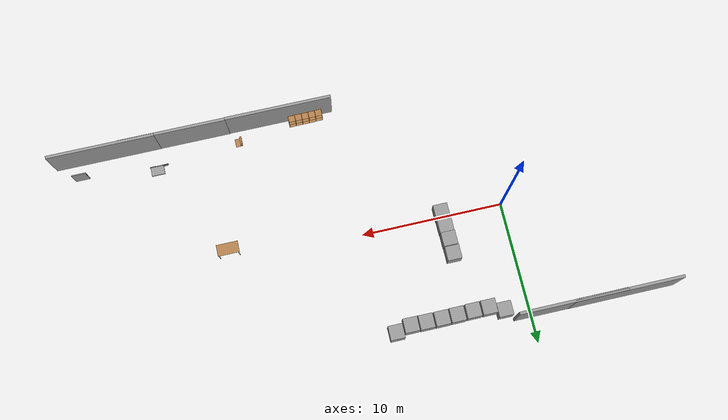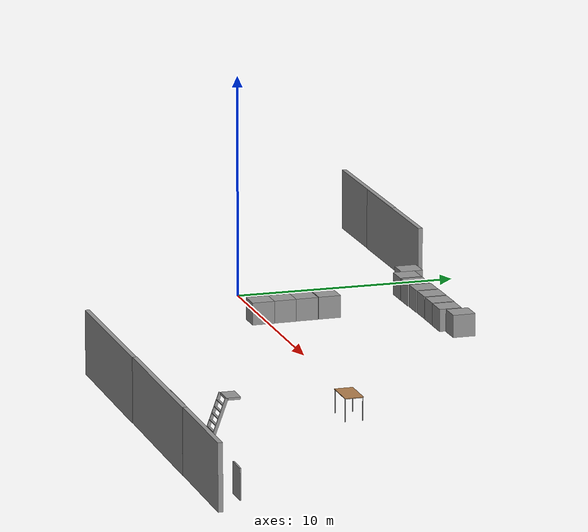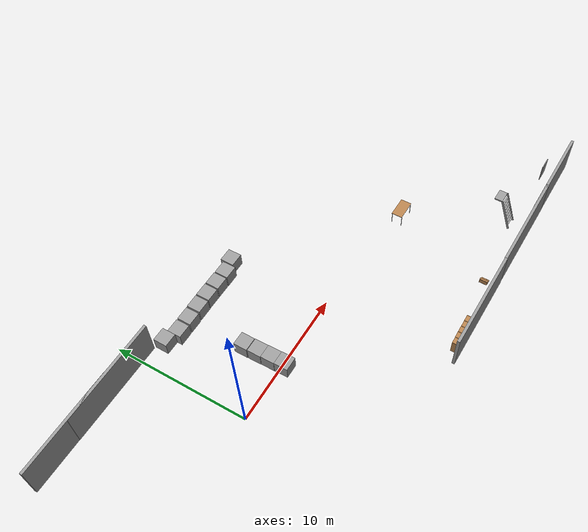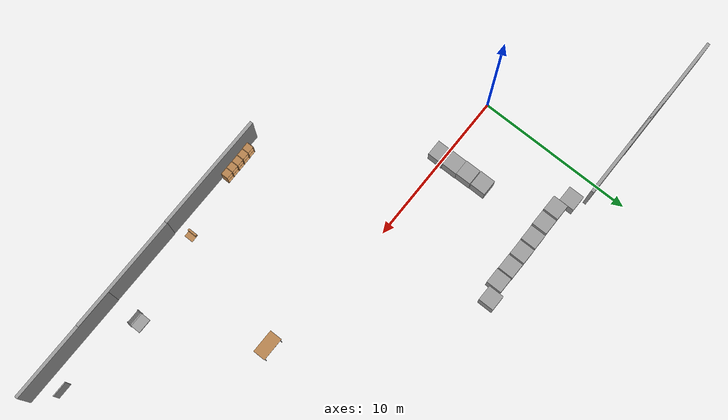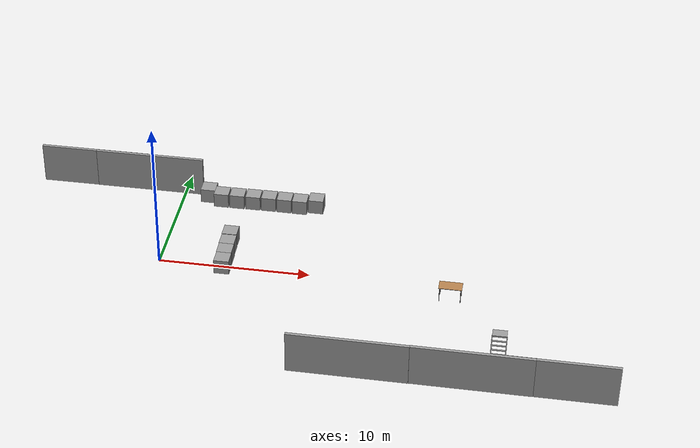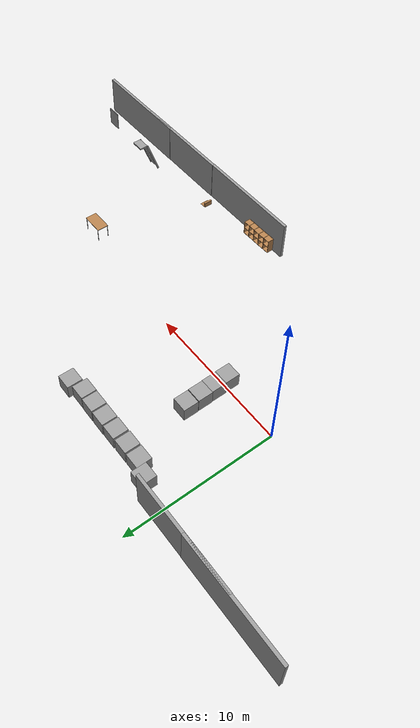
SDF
<sdf version="1.6">
 <world name="factory">
  <light name="sun" type="directional">
   <pose>0 0 10 0 -0 0</pose>
   <diffuse>0.8 0.8 0.8 1</diffuse>
   <specular>0.2 0.2 0.2 1</specular>
   <attenuation>
    <range>1000</range>
    <constant>0.9</constant>
    <linear>0.01</linear>
    <quadratic>0.001</quadratic>
   </attenuation>
   <direction>-0.5 0.1 -0.9</direction>
  </light>
  <gravity>0 0 -9.8</gravity>
  <magnetic_field>6e-06 2.3e-05 -4.2e-05</magnetic_field>
  <atmosphere type="adiabatic"/>
  <physics name="default_physics" default="0" type="ode">
   <max_step_size>0.001</max_step_size>
   <real_time_factor>1</real_time_factor>
   <real_time_update_rate>1000</real_time_update_rate>
  </physics>
  <scene><ambient>0.4 0.4 0.4 1</ambient><background>0.7 0.7 0.7 1</background><shadows>1</shadows></scene>
  <spherical_coordinates>
   <surface_model>EARTH_WGS84</surface_model>
   <latitude_deg>0</latitude_deg>
   <longitude_deg>0</longitude_deg>
   <elevation>0</elevation>
   <heading_deg>0</heading_deg>
  </spherical_coordinates>
  <model name="deletion_wall">
   <static>1</static>
   <link name="sensing_link">
    <gravity>0</gravity>
    <sensor name="object_disposal_contact" type="contact">
     <update_rate>10</update_rate>
     <contact><collision>collision</collision><topic>__default_topic__</topic></contact>
    </sensor>
    <collision name="collision"><geometry><box><size>0.1 1 1</size></box></geometry></collision>
    <visual name="visual">
     <geometry><box><size>0.1 1 1</size></box></geometry>
     <cast_shadows>0</cast_shadows>
     <transparency>100</transparency>
    </visual>
   </link>
   <plugin name="object_disposal_plugin" filename="libObjectDisposalPlugin.so">
    <contact_sensor_name>object_disposal_contact</contact_sensor_name>
    <contact_side_normal>1 0 0</contact_side_normal>
    <disposal_pose>30 30 0 0 0 0</disposal_pose>
    <update_rate>5</update_rate>
   </plugin>
   <pose>0.199032 -1.08981 0 0 -0 0</pose>
  </model>
  <model name="drone_collection_zone">
   <static>1</static>
   <link name="sensing_link">
    <gravity>0</gravity>
    <sensor name="object_disposal_contact" type="contact">
     <update_rate>10</update_rate>
     <contact><collision>collision</collision><topic>__default_topic__</topic></contact>
    </sensor>
    <collision name="collision"><geometry><box><size>0.1 2 2</size></box></geometry></collision>
   </link>
   <plugin name="object_disposal_plugin" filename="libObjectDisposalPlugin.so">
    <contact_sensor_name>object_disposal_contact</contact_sensor_name>
    <contacting_box_topic>/ariac/waiting_shipping_box</contacting_box_topic>
    <activation_topic>/ariac/drone_collection_zone/activate_deletion</activation_topic>
    <contact_side_normal>1 0 0</contact_side_normal>
    <disposal_pose>-7.5 -10 -0.5 0 0 0</disposal_pose>
    <update_rate>5</update_rate>
   </plugin>
   <pose>-0.093674 -2.00167 0 0 -0 0</pose>
  </model>
  <model name="ladder_70deg_0rails">
   <static>1</static>
   <link name="step0">
    <pose>0 0.097059 0.266667 0 -0 0</pose>
    <inertial>
     <mass>9.75482</mass>
     <inertia>
      <ixx>0.00957124</ixx>
      <iyy>0.65963</iyy>
      <izz>0.666842</izz>
      <ixy>0</ixy>
      <ixz>0</ixz>
      <iyz>0</iyz>
     </inertia>
    </inertial>
    <collision name="collision"><geometry><box><size>0.9 0.1016 0.0381</size></box></geometry></collision>
    <visual name="visual">
     <geometry><box><size>0.9 0.1016 0.0381</size></box></geometry>
     <material>
      <script><uri>file://media/materials/scripts/gazebo.material</uri><name>Gazebo/Grey</name></script>
     </material>
    </visual>
   </link>
   <link name="step1">
    <pose>0 0.194117 0.533333 0 -0 0</pose>
    <inertial>
     <mass>9.75482</mass>
     <inertia>
      <ixx>0.00957124</ixx>
      <iyy>0.65963</iyy>
      <izz>0.666842</izz>
      <ixy>0</ixy>
      <ixz>0</ixz>
      <iyz>0</iyz>
     </inertia>
    </inertial>
    <collision name="collision"><geometry><box><size>0.9 0.1016 0.0381</size></box></geometry></collision>
    <visual name="visual">
     <geometry><box><size>0.9 0.1016 0.0381</size></box></geometry>
     <material>
      <script><uri>file://media/materials/scripts/gazebo.material</uri><name>Gazebo/Grey</name></script>
     </material>
    </visual>
   </link>
   <link name="step2">
    <pose>0 0.291176 0.8 0 -0 0</pose>
    <inertial>
     <mass>9.75482</mass>
     <inertia>
      <ixx>0.00957124</ixx>
      <iyy>0.65963</iyy>
      <izz>0.666842</izz>
      <ixy>0</ixy>
      <ixz>0</ixz>
      <iyz>0</iyz>
     </inertia>
    </inertial>
    <collision name="collision"><geometry><box><size>0.9 0.1016 0.0381</size></box></geometry></collision>
    <visual name="visual">
     <geometry><box><size>0.9 0.1016 0.0381</size></box></geometry>
     <material>
      <script><uri>file://media/materials/scripts/gazebo.material</uri><name>Gazebo/Grey</name></script>
     </material>
    </visual>
   </link>
   <link name="step3">
    <pose>0 0.388235 1.06667 0 -0 0</pose>
    <inertial>
     <mass>9.75482</mass>
     <inertia>
      <ixx>0.00957124</ixx>
      <iyy>0.65963</iyy>
      <izz>0.666842</izz>
      <ixy>0</ixy>
      <ixz>0</ixz>
      <iyz>0</iyz>
     </inertia>
    </inertial>
    <collision name="collision"><geometry><box><size>0.9 0.1016 0.0381</size></box></geometry></collision>
    <visual name="visual">
     <geometry><box><size>0.9 0.1016 0.0381</size></box></geometry>
     <material>
      <script><uri>file://media/materials/scripts/gazebo.material</uri><name>Gazebo/Grey</name></script>
     </material>
    </visual>
   </link>
   <link name="step4">
    <pose>0 0.485294 1.33333 0 -0 0</pose>
    <inertial>
     <mass>9.75482</mass>
     <inertia>
      <ixx>0.00957124</ixx>
      <iyy>0.65963</iyy>
      <izz>0.666842</izz>
      <ixy>0</ixy>
      <ixz>0</ixz>
      <iyz>0</iyz>
     </inertia>
    </inertial>
    <collision name="collision"><geometry><box><size>0.9 0.1016 0.0381</size></box></geometry></collision>
    <visual name="visual">
     <geometry><box><size>0.9 0.1016 0.0381</size></box></geometry>
     <material>
      <script><uri>file://media/materials/scripts/gazebo.material</uri><name>Gazebo/Grey</name></script>
     </material>
    </visual>
   </link>
   <link name="step5">
    <pose>0 0.582352 1.6 0 -0 0</pose>
    <inertial>
     <mass>9.75482</mass>
     <inertia>
      <ixx>0.00957124</ixx>
      <iyy>0.65963</iyy>
      <izz>0.666842</izz>
      <ixy>0</ixy>
      <ixz>0</ixz>
      <iyz>0</iyz>
     </inertia>
    </inertial>
    <collision name="collision"><geometry><box><size>0.9 0.1016 0.0381</size></box></geometry></collision>
    <visual name="visual">
     <geometry><box><size>0.9 0.1016 0.0381</size></box></geometry>
     <material>
      <script><uri>file://media/materials/scripts/gazebo.material</uri><name>Gazebo/Grey</name></script>
     </material>
    </visual>
   </link>
   <link name="step6">
    <pose>0 0.679411 1.86667 0 -0 0</pose>
    <inertial>
     <mass>9.75482</mass>
     <inertia>
      <ixx>0.00957124</ixx>
      <iyy>0.65963</iyy>
      <izz>0.666842</izz>
      <ixy>0</ixy>
      <ixz>0</ixz>
      <iyz>0</iyz>
     </inertia>
    </inertial>
    <collision name="collision"><geometry><box><size>0.9 0.1016 0.0381</size></box></geometry></collision>
    <visual name="visual">
     <geometry><box><size>0.9 0.1016 0.0381</size></box></geometry>
     <material>
      <script><uri>file://media/materials/scripts/gazebo.material</uri><name>Gazebo/Grey</name></script>
     </material>
    </visual>
   </link>
   <link name="step7">
    <pose>0 0.77647 2.13333 0 -0 0</pose>
    <inertial>
     <mass>9.75482</mass>
     <inertia>
      <ixx>0.00957124</ixx>
      <iyy>0.65963</iyy>
      <izz>0.666842</izz>
      <ixy>0</ixy>
      <ixz>0</ixz>
      <iyz>0</iyz>
     </inertia>
    </inertial>
    <collision name="collision"><geometry><box><size>0.9 0.1016 0.0381</size></box></geometry></collision>
    <visual name="visual">
     <geometry><box><size>0.9 0.1016 0.0381</size></box></geometry>
     <material>
      <script><uri>file://media/materials/scripts/gazebo.material</uri><name>Gazebo/Grey</name></script>
     </material>
    </visual>
   </link>
   <link name="landing">
    <pose>0 1.17353 2.4 0 -0 0</pose>
    <inertial>
     <mass>57.6072</mass>
     <inertia><ixx>1.73518</ixx><iyy>3.89545</iyy><izz>5.6167</izz><ixy>0</ixy><ixz>0</ixz><iyz>0</iyz></inertia>
    </inertial>
    <collision name="collision"><geometry><box><size>0.9 0.6 0.1016</size></box></geometry></collision>
    <visual name="visual">
     <geometry><box><size>0.9 0.6 0.1016</size></box></geometry>
     <material>
      <script><uri>file://media/materials/scripts/gazebo.material</uri><name>Gazebo/Grey</name></script>
     </material>
    </visual>
   </link>
   <link name="left_side_wall">
    <pose>-0.45 0.436764 1.2 1.22173 -0 0</pose>
    <collision name="collision"><geometry><box><size>0.0508 2.63403 0.13</size></box></geometry></collision>
    <visual name="visual">
     <geometry><box><size>0.0508 2.63403 0.13</size></box></geometry>
     <material>
      <script><uri>file://media/materials/scripts/gazebo.material</uri><name>Gazebo/Grey</name></script>
     </material>
    </visual>
   </link>
   <link name="right_side_wall">
    <pose>0.45 0.436764 1.2 1.22173 -0 0</pose>
    <collision name="collision"><geometry><box><size>0.0508 2.63403 0.13</size></box></geometry></collision>
    <visual name="visual">
     <geometry><box><size>0.0508 2.63403 0.13</size></box></geometry>
     <material>
      <script><uri>file://media/materials/scripts/gazebo.material</uri><name>Gazebo/Grey</name></script>
     </material>
    </visual>
   </link>
   <pose>22.7475 -8.13571 0 0 -0 0</pose>
  </model>
  <model name="grey_wall">
   <static>1</static>
   <link name="link">
    <pose>0 0 1.4 0 -0 0</pose>
    <collision name="collision"><geometry><box><size>7.5 0.2 2.8</size></box></geometry></collision>
    <visual name="visual">
     <cast_shadows>0</cast_shadows>
     <geometry><box><size>7.5 0.2 2.8</size></box></geometry>
     <material>
      <script>
       <uri>model://grey_wall/materials/scripts</uri>
       <uri>model://grey_wall/materials/textures</uri>
       <name>vrc/grey_wall</name>
      </script>
     </material>
    </visual>
   </link>
   <pose>-6.34942 8.1136 0 0 -0 0</pose>
  </model>
  <model name="grey_wall_clone">
   <static>1</static>
   <link name="link">
    <pose>0 0 1.4 0 -0 0</pose>
    <collision name="collision"><geometry><box><size>7.5 0.2 2.8</size></box></geometry></collision>
    <visual name="visual">
     <cast_shadows>0</cast_shadows>
     <geometry><box><size>7.5 0.2 2.8</size></box></geometry>
     <material>
      <script>
       <uri>model://grey_wall/materials/scripts</uri>
       <uri>model://grey_wall/materials/textures</uri>
       <name>vrc/grey_wall</name>
      </script>
     </material>
    </visual>
   </link>
   <pose>-2.50623 8.09985 0 0 -0 0</pose>
  </model>
  <model name="grey_wall_clone_0">
   <static>1</static>
   <link name="link">
    <pose>0 0 1.4 0 -0 0</pose>
    <collision name="collision"><geometry><box><size>7.5 0.2 2.8</size></box></geometry></collision>
    <visual name="visual">
     <cast_shadows>0</cast_shadows>
     <geometry><box><size>7.5 0.2 2.8</size></box></geometry>
     <material>
      <script>
       <uri>model://grey_wall/materials/scripts</uri>
       <uri>model://grey_wall/materials/textures</uri>
       <name>vrc/grey_wall</name>
      </script>
     </material>
    </visual>
   </link>
   <pose>13.8347 -9.52636 0 0 -0 0</pose>
  </model>
  <model name="grey_wall_clone_1">
   <static>1</static>
   <link name="link">
    <pose>0 0 1.4 0 -0 0</pose>
    <collision name="collision"><geometry><box><size>7.5 0.2 2.8</size></box></geometry></collision>
    <visual name="visual">
     <cast_shadows>0</cast_shadows>
     <geometry><box><size>7.5 0.2 2.8</size></box></geometry>
     <material>
      <script>
       <uri>model://grey_wall/materials/scripts</uri>
       <uri>model://grey_wall/materials/textures</uri>
       <name>vrc/grey_wall</name>
      </script>
     </material>
    </visual>
   </link>
   <pose>21.3028 -9.50574 0 0 -0 0</pose>
  </model>
  <model name="grey_wall_clone_2">
   <static>1</static>
   <link name="link">
    <pose>0 0 1.4 0 -0 0</pose>
    <collision name="collision"><geometry><box><size>7.5 0.2 2.8</size></box></geometry></collision>
    <visual name="visual">
     <cast_shadows>0</cast_shadows>
     <geometry><box><size>7.5 0.2 2.8</size></box></geometry>
     <material>
      <script>
       <uri>model://grey_wall/materials/scripts</uri>
       <uri>model://grey_wall/materials/textures</uri>
       <name>vrc/grey_wall</name>
      </script>
     </material>
    </visual>
   </link>
   <pose>26.2939 -9.49059 0 0 -0 0</pose>
  </model>
  <model name="unit_box">
   <pose>28.3607 -8.33661 0.656092 1e-06 -0 0.000206</pose>
   <link name="link">
    <inertial>
     <mass>1</mass>
     <inertia>
      <ixx>0.166667</ixx>
      <ixy>0</ixy>
      <ixz>0</ixz>
      <iyy>0.166667</iyy>
      <iyz>0</iyz>
      <izz>0.166667</izz>
     </inertia>
    </inertial>
    <collision name="collision"><geometry><box><size>1 0.056403 1.31218</size></box></geometry></collision>
    <visual name="visual">
     <geometry><box><size>1 0.056403 1.31218</size></box></geometry>
     <material>
      <script><name>Gazebo/Grey</name><uri>file://media/materials/scripts/gazebo.material</uri></script>
     </material>
    </visual>
   </link>
  </model>
  <model name="cabinet">
   <static>1</static>
   <link name="cabinet_bottom_plate">
    <inertial>
     <pose>0 0 -1 0 -0 0</pose>
     <inertia><ixx>2.05</ixx><ixy>0</ixy><ixz>0</ixz><iyy>2.05</iyy><iyz>0</iyz><izz>2.05</izz></inertia>
     <mass>25</mass>
    </inertial>
    <collision name="cabinet_bottom_plate_geom">
     <pose>0 0 0.01 0 -0 0</pose>
     <geometry><box><size>0.45 0.45 0.02</size></box></geometry>
    </collision>
    <visual name="cabinet_bottom_plate_geom_visual">
     <pose>0 0 0.01 0 -0 0</pose>
     <geometry><box><size>0.45 0.45 0.02</size></box></geometry>
     <material>
      <script><uri>file://media/materials/scripts/gazebo.material</uri><name>Gazebo/Wood</name></script>
     </material>
    </visual>
    <collision name="cabinet_bottom_plate_geom_cabinet_back_plate">
     <pose>0.235 0 0.51 0 -0 0</pose>
     <geometry><box><size>0.02 0.45 1.02</size></box></geometry>
    </collision>
    <visual name="cabinet_bottom_plate_geom_cabinet_back_plate_visual">
     <pose>0.235 0 0.51 0 -0 0</pose>
     <geometry><box><size>0.02 0.45 1.02</size></box></geometry>
     <material>
      <script><uri>file://media/materials/scripts/gazebo.material</uri><name>Gazebo/Wood</name></script>
     </material>
    </visual>
    <collision name="cabinet_bottom_plate_geom_cabinet_left_plate">
     <pose>0 0.235 0.51 0 -0 0</pose>
     <geometry><box><size>0.45 0.02 1.02</size></box></geometry>
    </collision>
    <visual name="cabinet_bottom_plate_geom_cabinet_left_plate_visual">
     <pose>0 0.235 0.51 0 -0 0</pose>
     <geometry><box><size>0.45 0.02 1.02</size></box></geometry>
     <material>
      <script><uri>file://media/materials/scripts/gazebo.material</uri><name>Gazebo/Wood</name></script>
     </material>
    </visual>
    <collision name="cabinet_bottom_plate_geom_cabinet_middle_plate">
     <pose>0 0 0.51 0 -0 0</pose>
     <geometry><box><size>0.45 0.45 0.02</size></box></geometry>
    </collision>
    <visual name="cabinet_bottom_plate_geom_cabinet_middle_plate_visual">
     <pose>0 0 0.51 0 -0 0</pose>
     <geometry><box><size>0.45 0.45 0.02</size></box></geometry>
     <material>
      <script><uri>file://media/materials/scripts/gazebo.material</uri><name>Gazebo/Wood</name></script>
     </material>
    </visual>
    <collision name="cabinet_bottom_plate_geom_cabinet_right_plate">
     <pose>0 -0.235 0.51 0 -0 0</pose>
     <geometry><box><size>0.45 0.02 1.02</size></box></geometry>
    </collision>
    <visual name="cabinet_bottom_plate_geom_cabinet_right_plate_visual">
     <pose>0 -0.235 0.51 0 -0 0</pose>
     <geometry><box><size>0.45 0.02 1.02</size></box></geometry>
     <material>
      <script><uri>file://media/materials/scripts/gazebo.material</uri><name>Gazebo/Wood</name></script>
     </material>
    </visual>
    <collision name="cabinet_bottom_plate_geom_cabinet_top_plate">
     <pose>0 0 1.01 0 -0 0</pose>
     <geometry><box><size>0.45 0.45 0.02</size></box></geometry>
    </collision>
    <visual name="cabinet_bottom_plate_geom_cabinet_top_plate_visual">
     <pose>0 0 1.01 0 -0 0</pose>
     <geometry><box><size>0.45 0.45 0.02</size></box></geometry>
     <material>
      <script><uri>file://media/materials/scripts/gazebo.material</uri><name>Gazebo/Wood</name></script>
     </material>
    </visual>
   </link>
   <pose>13.0394 -9.13497 0.037072 0 0 -1.55676</pose>
  </model>
  <model name="wooden_case">
   <link name="base">
    <pose>0 0 0.024 0 -0 0</pose>
    <inertial>
     <pose>-0.022184 0 0.171592 0 -0 0</pose>
     <mass>3.96264</mass>
     <inertia>
      <ixx>0.213536</ixx>
      <ixy>0</ixy>
      <ixz>0.000779377</ixz>
      <iyy>0.0708943</iyy>
      <iyz>0</iyz>
      <izz>0.154604</izz>
     </inertia>
    </inertial>
    <collision name="collision_back">
     <pose>-0.053975 0 0.1778 0 -0 0</pose>
     <geometry><box><size>0.01905 0.5461 0.3175</size></box></geometry>
     <surface>
      <contact>
       <poissons_ratio>0.347</poissons_ratio>
       <elastic_modulus>8.8e+09</elastic_modulus>
       <ode><kp>100000</kp><kd>100</kd><max_vel>100</max_vel><min_depth>0.001</min_depth></ode>
      </contact>
      <friction>
       <torsional>
        <coefficient>1</coefficient>
        <use_patch_radius>0</use_patch_radius>
        <surface_radius>0.01</surface_radius>
       </torsional>
      </friction>
     </surface>
    </collision>
    <visual name="visual_back">
     <pose>-0.053975 0 0.1778 0 -0 0</pose>
     <geometry><box><size>0.01905 0.5461 0.3175</size></box></geometry>
     <material>
      <script><uri>file://media/materials/scripts/gazebo.material</uri><name>Gazebo/Wood</name></script>
     </material>
    </visual>
    <collision name="collision_bottom">
     <pose>0 0 0.009525 0 -0 0</pose>
     <geometry><box><size>0.127 0.5842 0.01905</size></box></geometry>
     <surface>
      <contact>
       <poissons_ratio>0.347</poissons_ratio>
       <elastic_modulus>8.8e+09</elastic_modulus>
       <ode><kp>100000</kp><kd>100</kd><max_vel>100</max_vel><min_depth>0.001</min_depth></ode>
      </contact>
      <friction>
       <torsional>
        <coefficient>1</coefficient>
        <use_patch_radius>0</use_patch_radius>
        <surface_radius>0.01</surface_radius>
       </torsional>
      </friction>
     </surface>
    </collision>
    <visual name="visual_bottom">
     <pose>0 0 0.009525 0 -0 0</pose>
     <geometry><box><size>0.127 0.5842 0.01905</size></box></geometry>
     <material>
      <script><uri>file://media/materials/scripts/gazebo.material</uri><name>Gazebo/Wood</name></script>
     </material>
    </visual>
    <collision name="collision_top">
     <pose>0 0 0.346075 0 -0 0</pose>
     <geometry><box><size>0.127 0.5842 0.01905</size></box></geometry>
     <surface>
      <contact>
       <poissons_ratio>0.347</poissons_ratio>
       <elastic_modulus>8.8e+09</elastic_modulus>
       <ode><kp>100000</kp><kd>100</kd><max_vel>100</max_vel><min_depth>0.001</min_depth></ode>
      </contact>
      <friction>
       <torsional>
        <coefficient>1</coefficient>
        <use_patch_radius>0</use_patch_radius>
        <surface_radius>0.01</surface_radius>
       </torsional>
      </friction>
     </surface>
    </collision>
    <visual name="visual_top">
     <pose>0 0 0.346075 0 -0 0</pose>
     <geometry><box><size>0.127 0.5842 0.01905</size></box></geometry>
     <material>
      <script><uri>file://media/materials/scripts/gazebo.material</uri><name>Gazebo/Wood</name></script>
     </material>
    </visual>
    <collision name="collision_left">
     <pose>0 -0.282575 0.1778 0 -0 0</pose>
     <geometry><box><size>0.127 0.01905 0.3175</size></box></geometry>
     <surface>
      <contact>
       <poissons_ratio>0.347</poissons_ratio>
       <elastic_modulus>8.8e+09</elastic_modulus>
       <ode><kp>100000</kp><kd>100</kd><max_vel>100</max_vel><min_depth>0.001</min_depth></ode>
      </contact>
      <friction>
       <torsional>
        <coefficient>1</coefficient>
        <use_patch_radius>0</use_patch_radius>
        <surface_radius>0.01</surface_radius>
       </torsional>
      </friction>
     </surface>
    </collision>
    <visual name="visual_left">
     <pose>0 -0.282575 0.1778 0 -0 0</pose>
     <geometry><box><size>0.127 0.01905 0.3175</size></box></geometry>
     <material>
      <script><uri>file://media/materials/scripts/gazebo.material</uri><name>Gazebo/Wood</name></script>
     </material>
    </visual>
    <collision name="collision_right">
     <pose>0 0.282575 0.1778 0 -0 0</pose>
     <geometry><box><size>0.127 0.01905 0.3175</size></box></geometry>
     <surface>
      <contact>
       <poissons_ratio>0.347</poissons_ratio>
       <elastic_modulus>8.8e+09</elastic_modulus>
       <ode><kp>100000</kp><kd>100</kd><max_vel>100</max_vel><min_depth>0.001</min_depth></ode>
      </contact>
      <friction>
       <torsional>
        <coefficient>1</coefficient>
        <use_patch_radius>0</use_patch_radius>
        <surface_radius>0.01</surface_radius>
       </torsional>
      </friction>
     </surface>
    </collision>
    <visual name="visual_right">
     <pose>0 0.282575 0.1778 0 -0 0</pose>
     <geometry><box><size>0.127 0.01905 0.3175</size></box></geometry>
     <material>
      <script><uri>file://media/materials/scripts/gazebo.material</uri><name>Gazebo/Wood</name></script>
     </material>
    </visual>
    <collision name="collision_block_left">
     <pose>0.0095 -0.2151 -0.012 0 -0 0</pose>
     <geometry><box><size>0.108 0.05 0.024</size></box></geometry>
     <surface>
      <contact>
       <poissons_ratio>0.347</poissons_ratio>
       <elastic_modulus>8.8e+09</elastic_modulus>
       <ode><kp>100000</kp><kd>100</kd><max_vel>100</max_vel><min_depth>0.001</min_depth></ode>
      </contact>
      <friction>
       <torsional>
        <coefficient>1</coefficient>
        <use_patch_radius>0</use_patch_radius>
        <surface_radius>0.01</surface_radius>
       </torsional>
      </friction>
     </surface>
    </collision>
    <visual name="visual_block_left">
     <pose>0.0095 -0.2151 -0.012 0 -0 0</pose>
     <geometry><box><size>0.108 0.05 0.024</size></box></geometry>
     <material>
      <script><uri>file://media/materials/scripts/gazebo.material</uri><name>Gazebo/Wood</name></script>
     </material>
    </visual>
    <collision name="collision_block_right">
     <pose>0.0095 0.2151 -0.012 0 -0 0</pose>
     <geometry><box><size>0.108 0.05 0.024</size></box></geometry>
     <surface>
      <contact>
       <poissons_ratio>0.347</poissons_ratio>
       <elastic_modulus>8.8e+09</elastic_modulus>
       <ode><kp>100000</kp><kd>100</kd><max_vel>100</max_vel><min_depth>0.001</min_depth></ode>
      </contact>
      <friction>
       <torsional>
        <coefficient>1</coefficient>
        <use_patch_radius>0</use_patch_radius>
        <surface_radius>0.01</surface_radius>
       </torsional>
      </friction>
     </surface>
    </collision>
    <visual name="visual_block_right">
     <pose>0.0095 0.2151 -0.012 0 -0 0</pose>
     <geometry><box><size>0.108 0.05 0.024</size></box></geometry>
     <material>
      <script><uri>file://media/materials/scripts/gazebo.material</uri><name>Gazebo/Wood</name></script>
     </material>
    </visual>
   </link>
   <link name="lid">
    <pose>0.243775 0 0.009525 0 -0 0</pose>
    <inertial>
     <mass>1.97874</mass>
     <inertia>
      <ixx>0.0563367</ixx>
      <ixy>0</ixy>
      <ixz>0</ixz>
      <iyy>0.020911</iyy>
      <iyz>0</iyz>
      <izz>0.0771281</izz>
     </inertia>
    </inertial>
    <collision name="collision">
     <geometry><box><size>0.3556 0.5842 0.01905</size></box></geometry>
     <surface>
      <contact>
       <poissons_ratio>0.347</poissons_ratio>
       <elastic_modulus>8.8e+09</elastic_modulus>
       <ode><kp>100000</kp><kd>100</kd><max_vel>100</max_vel><min_depth>0.001</min_depth></ode>
      </contact>
      <friction>
       <torsional>
        <coefficient>1</coefficient>
        <use_patch_radius>0</use_patch_radius>
        <surface_radius>0.01</surface_radius>
       </torsional>
      </friction>
     </surface>
    </collision>
    <visual name="visual">
     <geometry><box><size>0.3556 0.5842 0.01905</size></box></geometry>
     <material>
      <script><uri>file://media/materials/scripts/gazebo.material</uri><name>Gazebo/Wood</name></script>
     </material>
    </visual>
    <visual name="tee_nut_1">
     <pose>0.122 -0.216 0 0 -0 0</pose>
     <geometry><cylinder><radius>0.00635</radius><length>0.0192405</length></cylinder></geometry>
     <material>
      <script><uri>file://media/materials/scripts/gazebo.material</uri><name>Gazebo/Grey</name></script>
     </material>
    </visual>
    <visual name="tee_nut_2">
     <pose>0.122 -0.088 0 0 -0 0</pose>
     <geometry><cylinder><radius>0.00635</radius><length>0.0192405</length></cylinder></geometry>
     <material>
      <script><uri>file://media/materials/scripts/gazebo.material</uri><name>Gazebo/Grey</name></script>
     </material>
    </visual>
    <visual name="tee_nut_3">
     <pose>0.122 0.088 0 0 -0 0</pose>
     <geometry><cylinder><radius>0.00635</radius><length>0.0192405</length></cylinder></geometry>
     <material>
      <script><uri>file://media/materials/scripts/gazebo.material</uri><name>Gazebo/Grey</name></script>
     </material>
    </visual>
    <visual name="tee_nut_4">
     <pose>0.122 0.216 0 0 -0 0</pose>
     <geometry><cylinder><radius>0.00635</radius><length>0.0192405</length></cylinder></geometry>
     <material>
      <script><uri>file://media/materials/scripts/gazebo.material</uri><name>Gazebo/Grey</name></script>
     </material>
    </visual>
   </link>
   <joint name="lid_hinge" type="revolute">
    <pose>-0.1778 0 0.01905 0 -0 0</pose>
    <parent>base</parent>
    <child>lid</child>
    <axis>
     <xyz>0 1 0</xyz>
     <limit><upper>0.523599</upper><lower>-1.5708</lower></limit>
     <use_parent_model_frame>0</use_parent_model_frame>
     <dynamics><spring_reference>0</spring_reference><spring_stiffness>0</spring_stiffness></dynamics>
    </axis>
   </joint>
   <pose>16.9032 -8.59917 -0.001057 0 -0.000421 -0.000308</pose>
  </model>
  <model name="cabinet_clone">
   <static>1</static>
   <link name="cabinet_bottom_plate">
    <inertial>
     <pose>0 0 -1 0 -0 0</pose>
     <inertia><ixx>2.05</ixx><ixy>0</ixy><ixz>0</ixz><iyy>2.05</iyy><iyz>0</iyz><izz>2.05</izz></inertia>
     <mass>25</mass>
    </inertial>
    <collision name="cabinet_bottom_plate_geom">
     <pose>0 0 0.01 0 -0 0</pose>
     <geometry><box><size>0.45 0.45 0.02</size></box></geometry>
    </collision>
    <visual name="cabinet_bottom_plate_geom_visual">
     <pose>0 0 0.01 0 -0 0</pose>
     <geometry><box><size>0.45 0.45 0.02</size></box></geometry>
     <material>
      <script><uri>file://media/materials/scripts/gazebo.material</uri><name>Gazebo/Wood</name></script>
     </material>
    </visual>
    <collision name="cabinet_bottom_plate_geom_cabinet_back_plate">
     <pose>0.235 0 0.51 0 -0 0</pose>
     <geometry><box><size>0.02 0.45 1.02</size></box></geometry>
    </collision>
    <visual name="cabinet_bottom_plate_geom_cabinet_back_plate_visual">
     <pose>0.235 0 0.51 0 -0 0</pose>
     <geometry><box><size>0.02 0.45 1.02</size></box></geometry>
     <material>
      <script><uri>file://media/materials/scripts/gazebo.material</uri><name>Gazebo/Wood</name></script>
     </material>
    </visual>
    <collision name="cabinet_bottom_plate_geom_cabinet_left_plate">
     <pose>0 0.235 0.51 0 -0 0</pose>
     <geometry><box><size>0.45 0.02 1.02</size></box></geometry>
    </collision>
    <visual name="cabinet_bottom_plate_geom_cabinet_left_plate_visual">
     <pose>0 0.235 0.51 0 -0 0</pose>
     <geometry><box><size>0.45 0.02 1.02</size></box></geometry>
     <material>
      <script><uri>file://media/materials/scripts/gazebo.material</uri><name>Gazebo/Wood</name></script>
     </material>
    </visual>
    <collision name="cabinet_bottom_plate_geom_cabinet_middle_plate">
     <pose>0 0 0.51 0 -0 0</pose>
     <geometry><box><size>0.45 0.45 0.02</size></box></geometry>
    </collision>
    <visual name="cabinet_bottom_plate_geom_cabinet_middle_plate_visual">
     <pose>0 0 0.51 0 -0 0</pose>
     <geometry><box><size>0.45 0.45 0.02</size></box></geometry>
     <material>
      <script><uri>file://media/materials/scripts/gazebo.material</uri><name>Gazebo/Wood</name></script>
     </material>
    </visual>
    <collision name="cabinet_bottom_plate_geom_cabinet_right_plate">
     <pose>0 -0.235 0.51 0 -0 0</pose>
     <geometry><box><size>0.45 0.02 1.02</size></box></geometry>
    </collision>
    <visual name="cabinet_bottom_plate_geom_cabinet_right_plate_visual">
     <pose>0 -0.235 0.51 0 -0 0</pose>
     <geometry><box><size>0.45 0.02 1.02</size></box></geometry>
     <material>
      <script><uri>file://media/materials/scripts/gazebo.material</uri><name>Gazebo/Wood</name></script>
     </material>
    </visual>
    <collision name="cabinet_bottom_plate_geom_cabinet_top_plate">
     <pose>0 0 1.01 0 -0 0</pose>
     <geometry><box><size>0.45 0.45 0.02</size></box></geometry>
    </collision>
    <visual name="cabinet_bottom_plate_geom_cabinet_top_plate_visual">
     <pose>0 0 1.01 0 -0 0</pose>
     <geometry><box><size>0.45 0.45 0.02</size></box></geometry>
     <material>
      <script><uri>file://media/materials/scripts/gazebo.material</uri><name>Gazebo/Wood</name></script>
     </material>
    </visual>
   </link>
   <pose>12.5585 -9.14446 0.037072 0 0 -1.55676</pose>
  </model>
  <model name="cabinet_clone_0">
   <static>1</static>
   <link name="cabinet_bottom_plate">
    <inertial>
     <pose>0 0 -1 0 -0 0</pose>
     <inertia><ixx>2.05</ixx><ixy>0</ixy><ixz>0</ixz><iyy>2.05</iyy><iyz>0</iyz><izz>2.05</izz></inertia>
     <mass>25</mass>
    </inertial>
    <collision name="cabinet_bottom_plate_geom">
     <pose>0 0 0.01 0 -0 0</pose>
     <geometry><box><size>0.45 0.45 0.02</size></box></geometry>
    </collision>
    <visual name="cabinet_bottom_plate_geom_visual">
     <pose>0 0 0.01 0 -0 0</pose>
     <geometry><box><size>0.45 0.45 0.02</size></box></geometry>
     <material>
      <script><uri>file://media/materials/scripts/gazebo.material</uri><name>Gazebo/Wood</name></script>
     </material>
    </visual>
    <collision name="cabinet_bottom_plate_geom_cabinet_back_plate">
     <pose>0.235 0 0.51 0 -0 0</pose>
     <geometry><box><size>0.02 0.45 1.02</size></box></geometry>
    </collision>
    <visual name="cabinet_bottom_plate_geom_cabinet_back_plate_visual">
     <pose>0.235 0 0.51 0 -0 0</pose>
     <geometry><box><size>0.02 0.45 1.02</size></box></geometry>
     <material>
      <script><uri>file://media/materials/scripts/gazebo.material</uri><name>Gazebo/Wood</name></script>
     </material>
    </visual>
    <collision name="cabinet_bottom_plate_geom_cabinet_left_plate">
     <pose>0 0.235 0.51 0 -0 0</pose>
     <geometry><box><size>0.45 0.02 1.02</size></box></geometry>
    </collision>
    <visual name="cabinet_bottom_plate_geom_cabinet_left_plate_visual">
     <pose>0 0.235 0.51 0 -0 0</pose>
     <geometry><box><size>0.45 0.02 1.02</size></box></geometry>
     <material>
      <script><uri>file://media/materials/scripts/gazebo.material</uri><name>Gazebo/Wood</name></script>
     </material>
    </visual>
    <collision name="cabinet_bottom_plate_geom_cabinet_middle_plate">
     <pose>0 0 0.51 0 -0 0</pose>
     <geometry><box><size>0.45 0.45 0.02</size></box></geometry>
    </collision>
    <visual name="cabinet_bottom_plate_geom_cabinet_middle_plate_visual">
     <pose>0 0 0.51 0 -0 0</pose>
     <geometry><box><size>0.45 0.45 0.02</size></box></geometry>
     <material>
      <script><uri>file://media/materials/scripts/gazebo.material</uri><name>Gazebo/Wood</name></script>
     </material>
    </visual>
    <collision name="cabinet_bottom_plate_geom_cabinet_right_plate">
     <pose>0 -0.235 0.51 0 -0 0</pose>
     <geometry><box><size>0.45 0.02 1.02</size></box></geometry>
    </collision>
    <visual name="cabinet_bottom_plate_geom_cabinet_right_plate_visual">
     <pose>0 -0.235 0.51 0 -0 0</pose>
     <geometry><box><size>0.45 0.02 1.02</size></box></geometry>
     <material>
      <script><uri>file://media/materials/scripts/gazebo.material</uri><name>Gazebo/Wood</name></script>
     </material>
    </visual>
    <collision name="cabinet_bottom_plate_geom_cabinet_top_plate">
     <pose>0 0 1.01 0 -0 0</pose>
     <geometry><box><size>0.45 0.45 0.02</size></box></geometry>
    </collision>
    <visual name="cabinet_bottom_plate_geom_cabinet_top_plate_visual">
     <pose>0 0 1.01 0 -0 0</pose>
     <geometry><box><size>0.45 0.45 0.02</size></box></geometry>
     <material>
      <script><uri>file://media/materials/scripts/gazebo.material</uri><name>Gazebo/Wood</name></script>
     </material>
    </visual>
   </link>
   <pose>12.0748 -9.14339 0.037072 0 0 -1.55676</pose>
  </model>
  <model name="cabinet_clone_1">
   <static>1</static>
   <link name="cabinet_bottom_plate">
    <inertial>
     <pose>0 0 -1 0 -0 0</pose>
     <inertia><ixx>2.05</ixx><ixy>0</ixy><ixz>0</ixz><iyy>2.05</iyy><iyz>0</iyz><izz>2.05</izz></inertia>
     <mass>25</mass>
    </inertial>
    <collision name="cabinet_bottom_plate_geom">
     <pose>0 0 0.01 0 -0 0</pose>
     <geometry><box><size>0.45 0.45 0.02</size></box></geometry>
    </collision>
    <visual name="cabinet_bottom_plate_geom_visual">
     <pose>0 0 0.01 0 -0 0</pose>
     <geometry><box><size>0.45 0.45 0.02</size></box></geometry>
     <material>
      <script><uri>file://media/materials/scripts/gazebo.material</uri><name>Gazebo/Wood</name></script>
     </material>
    </visual>
    <collision name="cabinet_bottom_plate_geom_cabinet_back_plate">
     <pose>0.235 0 0.51 0 -0 0</pose>
     <geometry><box><size>0.02 0.45 1.02</size></box></geometry>
    </collision>
    <visual name="cabinet_bottom_plate_geom_cabinet_back_plate_visual">
     <pose>0.235 0 0.51 0 -0 0</pose>
     <geometry><box><size>0.02 0.45 1.02</size></box></geometry>
     <material>
      <script><uri>file://media/materials/scripts/gazebo.material</uri><name>Gazebo/Wood</name></script>
     </material>
    </visual>
    <collision name="cabinet_bottom_plate_geom_cabinet_left_plate">
     <pose>0 0.235 0.51 0 -0 0</pose>
     <geometry><box><size>0.45 0.02 1.02</size></box></geometry>
    </collision>
    <visual name="cabinet_bottom_plate_geom_cabinet_left_plate_visual">
     <pose>0 0.235 0.51 0 -0 0</pose>
     <geometry><box><size>0.45 0.02 1.02</size></box></geometry>
     <material>
      <script><uri>file://media/materials/scripts/gazebo.material</uri><name>Gazebo/Wood</name></script>
     </material>
    </visual>
    <collision name="cabinet_bottom_plate_geom_cabinet_middle_plate">
     <pose>0 0 0.51 0 -0 0</pose>
     <geometry><box><size>0.45 0.45 0.02</size></box></geometry>
    </collision>
    <visual name="cabinet_bottom_plate_geom_cabinet_middle_plate_visual">
     <pose>0 0 0.51 0 -0 0</pose>
     <geometry><box><size>0.45 0.45 0.02</size></box></geometry>
     <material>
      <script><uri>file://media/materials/scripts/gazebo.material</uri><name>Gazebo/Wood</name></script>
     </material>
    </visual>
    <collision name="cabinet_bottom_plate_geom_cabinet_right_plate">
     <pose>0 -0.235 0.51 0 -0 0</pose>
     <geometry><box><size>0.45 0.02 1.02</size></box></geometry>
    </collision>
    <visual name="cabinet_bottom_plate_geom_cabinet_right_plate_visual">
     <pose>0 -0.235 0.51 0 -0 0</pose>
     <geometry><box><size>0.45 0.02 1.02</size></box></geometry>
     <material>
      <script><uri>file://media/materials/scripts/gazebo.material</uri><name>Gazebo/Wood</name></script>
     </material>
    </visual>
    <collision name="cabinet_bottom_plate_geom_cabinet_top_plate">
     <pose>0 0 1.01 0 -0 0</pose>
     <geometry><box><size>0.45 0.45 0.02</size></box></geometry>
    </collision>
    <visual name="cabinet_bottom_plate_geom_cabinet_top_plate_visual">
     <pose>0 0 1.01 0 -0 0</pose>
     <geometry><box><size>0.45 0.45 0.02</size></box></geometry>
     <material>
      <script><uri>file://media/materials/scripts/gazebo.material</uri><name>Gazebo/Wood</name></script>
     </material>
    </visual>
   </link>
   <pose>11.5886 -9.15198 0.037072 0 0 -1.55676</pose>
  </model>
  <model name="cabinet_clone_2">
   <static>1</static>
   <link name="cabinet_bottom_plate">
    <inertial>
     <pose>0 0 -1 0 -0 0</pose>
     <inertia><ixx>2.05</ixx><ixy>0</ixy><ixz>0</ixz><iyy>2.05</iyy><iyz>0</iyz><izz>2.05</izz></inertia>
     <mass>25</mass>
    </inertial>
    <collision name="cabinet_bottom_plate_geom">
     <pose>0 0 0.01 0 -0 0</pose>
     <geometry><box><size>0.45 0.45 0.02</size></box></geometry>
    </collision>
    <visual name="cabinet_bottom_plate_geom_visual">
     <pose>0 0 0.01 0 -0 0</pose>
     <geometry><box><size>0.45 0.45 0.02</size></box></geometry>
     <material>
      <script><uri>file://media/materials/scripts/gazebo.material</uri><name>Gazebo/Wood</name></script>
     </material>
    </visual>
    <collision name="cabinet_bottom_plate_geom_cabinet_back_plate">
     <pose>0.235 0 0.51 0 -0 0</pose>
     <geometry><box><size>0.02 0.45 1.02</size></box></geometry>
    </collision>
    <visual name="cabinet_bottom_plate_geom_cabinet_back_plate_visual">
     <pose>0.235 0 0.51 0 -0 0</pose>
     <geometry><box><size>0.02 0.45 1.02</size></box></geometry>
     <material>
      <script><uri>file://media/materials/scripts/gazebo.material</uri><name>Gazebo/Wood</name></script>
     </material>
    </visual>
    <collision name="cabinet_bottom_plate_geom_cabinet_left_plate">
     <pose>0 0.235 0.51 0 -0 0</pose>
     <geometry><box><size>0.45 0.02 1.02</size></box></geometry>
    </collision>
    <visual name="cabinet_bottom_plate_geom_cabinet_left_plate_visual">
     <pose>0 0.235 0.51 0 -0 0</pose>
     <geometry><box><size>0.45 0.02 1.02</size></box></geometry>
     <material>
      <script><uri>file://media/materials/scripts/gazebo.material</uri><name>Gazebo/Wood</name></script>
     </material>
    </visual>
    <collision name="cabinet_bottom_plate_geom_cabinet_middle_plate">
     <pose>0 0 0.51 0 -0 0</pose>
     <geometry><box><size>0.45 0.45 0.02</size></box></geometry>
    </collision>
    <visual name="cabinet_bottom_plate_geom_cabinet_middle_plate_visual">
     <pose>0 0 0.51 0 -0 0</pose>
     <geometry><box><size>0.45 0.45 0.02</size></box></geometry>
     <material>
      <script><uri>file://media/materials/scripts/gazebo.material</uri><name>Gazebo/Wood</name></script>
     </material>
    </visual>
    <collision name="cabinet_bottom_plate_geom_cabinet_right_plate">
     <pose>0 -0.235 0.51 0 -0 0</pose>
     <geometry><box><size>0.45 0.02 1.02</size></box></geometry>
    </collision>
    <visual name="cabinet_bottom_plate_geom_cabinet_right_plate_visual">
     <pose>0 -0.235 0.51 0 -0 0</pose>
     <geometry><box><size>0.45 0.02 1.02</size></box></geometry>
     <material>
      <script><uri>file://media/materials/scripts/gazebo.material</uri><name>Gazebo/Wood</name></script>
     </material>
    </visual>
    <collision name="cabinet_bottom_plate_geom_cabinet_top_plate">
     <pose>0 0 1.01 0 -0 0</pose>
     <geometry><box><size>0.45 0.45 0.02</size></box></geometry>
    </collision>
    <visual name="cabinet_bottom_plate_geom_cabinet_top_plate_visual">
     <pose>0 0 1.01 0 -0 0</pose>
     <geometry><box><size>0.45 0.45 0.02</size></box></geometry>
     <material>
      <script><uri>file://media/materials/scripts/gazebo.material</uri><name>Gazebo/Wood</name></script>
     </material>
    </visual>
   </link>
   <pose>11.1088 -9.16946 0.037072 0 0 -1.55676</pose>
  </model>
  <model name="table">
   <static>1</static>
   <link name="link">
    <collision name="surface">
     <pose>0 0 1 0 -0 0</pose>
     <geometry><box><size>1.5 0.8 0.03</size></box></geometry>
     <surface><friction><ode><mu>0.6</mu><mu2>0.6</mu2></ode></friction></surface>
    </collision>
    <visual name="visual1">
     <pose>0 0 1 0 -0 0</pose>
     <geometry><box><size>1.5 0.8 0.03</size></box></geometry>
     <material>
      <script><uri>file://media/materials/scripts/gazebo.material</uri><name>Gazebo/Wood</name></script>
     </material>
    </visual>
    <collision name="front_left_leg">
     <pose>0.68 0.38 0.5 0 -0 0</pose>
     <geometry><cylinder><radius>0.02</radius><length>1</length></cylinder></geometry>
    </collision>
    <visual name="front_left_leg">
     <pose>0.68 0.38 0.5 0 -0 0</pose>
     <geometry><cylinder><radius>0.02</radius><length>1</length></cylinder></geometry>
     <material>
      <script><uri>file://media/materials/scripts/gazebo.material</uri><name>Gazebo/Grey</name></script>
     </material>
    </visual>
    <collision name="front_right_leg">
     <pose>0.68 -0.38 0.5 0 -0 0</pose>
     <geometry><cylinder><radius>0.02</radius><length>1</length></cylinder></geometry>
    </collision>
    <visual name="front_right_leg">
     <pose>0.68 -0.38 0.5 0 -0 0</pose>
     <geometry><cylinder><radius>0.02</radius><length>1</length></cylinder></geometry>
     <material>
      <script><uri>file://media/materials/scripts/gazebo.material</uri><name>Gazebo/Grey</name></script>
     </material>
    </visual>
    <collision name="back_right_leg">
     <pose>-0.68 -0.38 0.5 0 -0 0</pose>
     <geometry><cylinder><radius>0.02</radius><length>1</length></cylinder></geometry>
    </collision>
    <visual name="back_right_leg">
     <pose>-0.68 -0.38 0.5 0 -0 0</pose>
     <geometry><cylinder><radius>0.02</radius><length>1</length></cylinder></geometry>
     <material>
      <script><uri>file://media/materials/scripts/gazebo.material</uri><name>Gazebo/Grey</name></script>
     </material>
    </visual>
    <collision name="back_left_leg">
     <pose>-0.68 0.38 0.5 0 -0 0</pose>
     <geometry><cylinder><radius>0.02</radius><length>1</length></cylinder></geometry>
    </collision>
    <visual name="back_left_leg">
     <pose>-0.68 0.38 0.5 0 -0 0</pose>
     <geometry><cylinder><radius>0.02</radius><length>1</length></cylinder></geometry>
     <material>
      <script><uri>file://media/materials/scripts/gazebo.material</uri><name>Gazebo/Grey</name></script>
     </material>
    </visual>
   </link>
   <pose>19.256 -0.907717 0 0 -0 0</pose>
  </model>
  <light name="user_spot_light_0" type="spot">
   <pose>19.0102 -3.28175 1 0 -0 0</pose>
   <diffuse>0.5 0.5 0.5 1</diffuse>
   <specular>0.1 0.1 0.1 1</specular>
   <direction>0 0 -1</direction>
   <attenuation>
    <range>20</range>
    <constant>0.5</constant>
    <linear>0.01</linear>
    <quadratic>0.001</quadratic>
   </attenuation>
   <cast_shadows>0</cast_shadows>
   <spot><inner_angle>0.6</inner_angle><outer_angle>1</outer_angle><falloff>1</falloff></spot>
  </light>
  <light name="user_spot_light_0_clone" type="spot">
   <pose>26.8211 5.91503 7.17268 0 -0 0</pose>
   <diffuse>0.5 0.5 0.5 1</diffuse>
   <specular>0.1 0.1 0.1 1</specular>
   <direction>0 0 -1</direction>
   <attenuation>
    <range>20</range>
    <constant>0.5</constant>
    <linear>0.01</linear>
    <quadratic>0.001</quadratic>
   </attenuation>
   <cast_shadows>0</cast_shadows>
   <spot><inner_angle>0.6</inner_angle><outer_angle>1</outer_angle><falloff>1</falloff></spot>
  </light>
  <light name="user_spot_light_0_clone_clone" type="spot">
   <pose>-4.22523 -4.87712 7.17268 0 -0 0</pose>
   <diffuse>0.5 0.5 0.5 1</diffuse>
   <specular>0.1 0.1 0.1 1</specular>
   <direction>0 0 -1</direction>
   <attenuation>
    <range>20</range>
    <constant>0.5</constant>
    <linear>0.01</linear>
    <quadratic>0.001</quadratic>
   </attenuation>
   <cast_shadows>0</cast_shadows>
   <spot><inner_angle>0.6</inner_angle><outer_angle>1</outer_angle><falloff>1</falloff></spot>
  </light>
  <light name="user_spot_light_0_clone_clone_clone" type="spot">
   <pose>0.543716 1.56833 7.17268 0 -0 0</pose>
   <diffuse>0.5 0.5 0.5 1</diffuse>
   <specular>0.1 0.1 0.1 1</specular>
   <direction>0 0 -1</direction>
   <attenuation>
    <range>20</range>
    <constant>0.5</constant>
    <linear>0.01</linear>
    <quadratic>0.001</quadratic>
   </attenuation>
   <cast_shadows>0</cast_shadows>
   <spot><inner_angle>0.6</inner_angle><outer_angle>1</outer_angle><falloff>1</falloff></spot>
  </light>
  <light name="user_spot_light_0_clone_clone_clone_clone" type="spot">
   <pose>14.8134 7.31309 7.17268 0 -0 0</pose>
   <diffuse>0.5 0.5 0.5 1</diffuse>
   <specular>0.1 0.1 0.1 1</specular>
   <direction>0 0 -1</direction>
   <attenuation>
    <range>20</range>
    <constant>0.5</constant>
    <linear>0.01</linear>
    <quadratic>0.001</quadratic>
   </attenuation>
   <cast_shadows>0</cast_shadows>
   <spot><inner_angle>0.6</inner_angle><outer_angle>1</outer_angle><falloff>1</falloff></spot>
  </light>
  <light name="user_spot_light_0_clone_clone_clone_clone_clone" type="spot">
   <pose>4.47445 -6.80903 7.17268 0 -0 0</pose>
   <diffuse>0.5 0.5 0.5 1</diffuse>
   <specular>0.1 0.1 0.1 1</specular>
   <direction>0 0 -1</direction>
   <attenuation>
    <range>20</range>
    <constant>0.5</constant>
    <linear>0.01</linear>
    <quadratic>0.001</quadratic>
   </attenuation>
   <cast_shadows>0</cast_shadows>
   <spot><inner_angle>0.6</inner_angle><outer_angle>1</outer_angle><falloff>1</falloff></spot>
  </light>
  <audio><device>default</device></audio>
  <model name="unit_box_0">
   <pose>1.80299 7.37662 0.665 0 0 -0.000778</pose>
   <link name="link">
    <inertial>
     <mass>1</mass>
     <inertia>
      <ixx>0.166667</ixx>
      <ixy>0</ixy>
      <ixz>0</ixz>
      <iyy>0.166667</iyy>
      <iyz>0</iyz>
      <izz>0.166667</izz>
     </inertia>
    </inertial>
    <collision name="collision"><geometry><box><size>1 1 1</size></box></geometry></collision>
    <visual name="visual">
     <geometry><box><size>1 1 1</size></box></geometry>
     <material>
      <script><name>Gazebo/Grey</name><uri>file://media/materials/scripts/gazebo.material</uri></script>
     </material>
    </visual>
   </link>
  </model>
  <model name="unit_box_1">
   <pose>2.80376 6.98809 0.664995 -1e-05 0 -0.00014</pose>
   <link name="link">
    <inertial>
     <mass>1</mass>
     <inertia>
      <ixx>0.166667</ixx>
      <ixy>0</ixy>
      <ixz>0</ixz>
      <iyy>0.166667</iyy>
      <iyz>0</iyz>
      <izz>0.166667</izz>
     </inertia>
    </inertial>
    <collision name="collision"><geometry><box><size>1 1 1</size></box></geometry></collision>
    <visual name="visual">
     <geometry><box><size>1 1 1</size></box></geometry>
     <material>
      <script><name>Gazebo/Grey</name><uri>file://media/materials/scripts/gazebo.material</uri></script>
     </material>
    </visual>
   </link>
  </model>
  <model name="unit_box_2">
   <pose>3.89482 6.99277 0.665 -0 -0 -0</pose>
   <link name="link">
    <inertial>
     <mass>1</mass>
     <inertia>
      <ixx>0.166667</ixx>
      <ixy>0</ixy>
      <ixz>0</ixz>
      <iyy>0.166667</iyy>
      <iyz>0</iyz>
      <izz>0.166667</izz>
     </inertia>
    </inertial>
    <collision name="collision"><geometry><box><size>1 1 1</size></box></geometry></collision>
    <visual name="visual">
     <geometry><box><size>1 1 1</size></box></geometry>
     <material>
      <script><name>Gazebo/Grey</name><uri>file://media/materials/scripts/gazebo.material</uri></script>
     </material>
    </visual>
   </link>
  </model>
  <model name="unit_box_3">
   <pose>4.9965 7.01936 0.665 -0 -0 -0</pose>
   <link name="link">
    <inertial>
     <mass>1</mass>
     <inertia>
      <ixx>0.166667</ixx>
      <ixy>0</ixy>
      <ixz>0</ixz>
      <iyy>0.166667</iyy>
      <iyz>0</iyz>
      <izz>0.166667</izz>
     </inertia>
    </inertial>
    <collision name="collision"><geometry><box><size>1 1 1</size></box></geometry></collision>
    <visual name="visual">
     <geometry><box><size>1 1 1</size></box></geometry>
     <material>
      <script><name>Gazebo/Grey</name><uri>file://media/materials/scripts/gazebo.material</uri></script>
     </material>
    </visual>
   </link>
  </model>
  <model name="unit_box_4">
   <pose>6.07265 7.03437 0.665 -0 -0 -0</pose>
   <link name="link">
    <inertial>
     <mass>1</mass>
     <inertia>
      <ixx>0.166667</ixx>
      <ixy>0</ixy>
      <ixz>0</ixz>
      <iyy>0.166667</iyy>
      <iyz>0</iyz>
      <izz>0.166667</izz>
     </inertia>
    </inertial>
    <collision name="collision"><geometry><box><size>1 1 1</size></box></geometry></collision>
    <visual name="visual">
     <geometry><box><size>1 1 1</size></box></geometry>
     <material>
      <script><name>Gazebo/Grey</name><uri>file://media/materials/scripts/gazebo.material</uri></script>
     </material>
    </visual>
   </link>
  </model>
  <model name="unit_box_5">
   <pose>7.15619 7.03109 0.665 -0 -0 -0</pose>
   <link name="link">
    <inertial>
     <mass>1</mass>
     <inertia>
      <ixx>0.166667</ixx>
      <ixy>0</ixy>
      <ixz>0</ixz>
      <iyy>0.166667</iyy>
      <iyz>0</iyz>
      <izz>0.166667</izz>
     </inertia>
    </inertial>
    <collision name="collision"><geometry><box><size>1 1 1</size></box></geometry></collision>
    <visual name="visual">
     <geometry><box><size>1 1 1</size></box></geometry>
     <material>
      <script><name>Gazebo/Grey</name><uri>file://media/materials/scripts/gazebo.material</uri></script>
     </material>
    </visual>
   </link>
  </model>
  <model name="unit_box_6">
   <pose>8.22061 7.01566 0.665 -0 -0 -0</pose>
   <link name="link">
    <inertial>
     <mass>1</mass>
     <inertia>
      <ixx>0.166667</ixx>
      <ixy>0</ixy>
      <ixz>0</ixz>
      <iyy>0.166667</iyy>
      <iyz>0</iyz>
      <izz>0.166667</izz>
     </inertia>
    </inertial>
    <collision name="collision"><geometry><box><size>1 1 1</size></box></geometry></collision>
    <visual name="visual">
     <geometry><box><size>1 1 1</size></box></geometry>
     <material>
      <script><name>Gazebo/Grey</name><uri>file://media/materials/scripts/gazebo.material</uri></script>
     </material>
    </visual>
   </link>
  </model>
  <model name="unit_box_7">
   <pose>9.30046 7.27547 0.665 -0 -0 -0</pose>
   <link name="link">
    <inertial>
     <mass>1</mass>
     <inertia>
      <ixx>0.166667</ixx>
      <ixy>0</ixy>
      <ixz>0</ixz>
      <iyy>0.166667</iyy>
      <iyz>0</iyz>
      <izz>0.166667</izz>
     </inertia>
    </inertial>
    <collision name="collision"><geometry><box><size>1 1 1</size></box></geometry></collision>
    <visual name="visual">
     <geometry><box><size>1 1 1</size></box></geometry>
     <material>
      <script><name>Gazebo/Grey</name><uri>file://media/materials/scripts/gazebo.material</uri></script>
     </material>
    </visual>
   </link>
  </model>
  <model name="unit_box_8">
   <pose>4.22254 2.79527 0.5 -0 -0 -0</pose>
   <link name="link">
    <inertial>
     <mass>1</mass>
     <inertia>
      <ixx>0.166667</ixx>
      <ixy>0</ixy>
      <ixz>0</ixz>
      <iyy>0.166667</iyy>
      <iyz>0</iyz>
      <izz>0.166667</izz>
     </inertia>
    </inertial>
    <collision name="collision"><geometry><box><size>1 1 1</size></box></geometry></collision>
    <visual name="visual">
     <geometry><box><size>1 1 1</size></box></geometry>
     <material>
      <script><name>Gazebo/Grey</name><uri>file://media/materials/scripts/gazebo.material</uri></script>
     </material>
    </visual>
   </link>
  </model>
  <model name="unit_box_9">
   <pose>4.24637 1.75492 0.5 0 -0 0.004951</pose>
   <link name="link">
    <inertial>
     <mass>1</mass>
     <inertia>
      <ixx>0.166667</ixx>
      <ixy>0</ixy>
      <ixz>0</ixz>
      <iyy>0.166667</iyy>
      <iyz>0</iyz>
      <izz>0.166667</izz>
     </inertia>
    </inertial>
    <collision name="collision"><geometry><box><size>1 1 1</size></box></geometry></collision>
    <visual name="visual">
     <geometry><box><size>1 1 1</size></box></geometry>
     <material>
      <script><name>Gazebo/Grey</name><uri>file://media/materials/scripts/gazebo.material</uri></script>
     </material>
    </visual>
   </link>
  </model>
  <model name="unit_box_10">
   <pose>4.27629 0.755028 0.499998 -5e-06 -0 0.005001</pose>
   <link name="link">
    <inertial>
     <mass>1</mass>
     <inertia>
      <ixx>0.166667</ixx>
      <ixy>0</ixy>
      <ixz>0</ixz>
      <iyy>0.166667</iyy>
      <iyz>0</iyz>
      <izz>0.166667</izz>
     </inertia>
    </inertial>
    <collision name="collision"><geometry><box><size>1 1 1</size></box></geometry></collision>
    <visual name="visual">
     <geometry><box><size>1 1 1</size></box></geometry>
     <material>
      <script><name>Gazebo/Grey</name><uri>file://media/materials/scripts/gazebo.material</uri></script>
     </material>
    </visual>
   </link>
  </model>
  <model name="unit_box_11">
   <pose>4.30427 -0.244944 0.499998 -5e-06 -0 0.005063</pose>
   <link name="link">
    <inertial>
     <mass>1</mass>
     <inertia>
      <ixx>0.166667</ixx>
      <ixy>0</ixy>
      <ixz>0</ixz>
      <iyy>0.166667</iyy>
      <iyz>0</iyz>
      <izz>0.166667</izz>
     </inertia>
    </inertial>
    <collision name="collision"><geometry><box><size>1 1 1</size></box></geometry></collision>
    <visual name="visual">
     <geometry><box><size>1 1 1</size></box></geometry>
     <material>
      <script><name>Gazebo/Grey</name><uri>file://media/materials/scripts/gazebo.material</uri></script>
     </material>
    </visual>
   </link>
  </model>
 </world>
</sdf>
